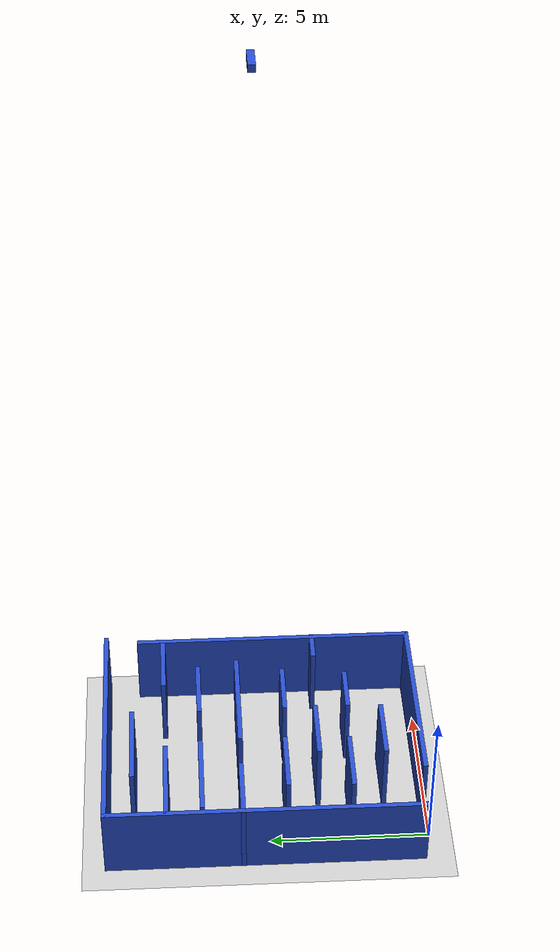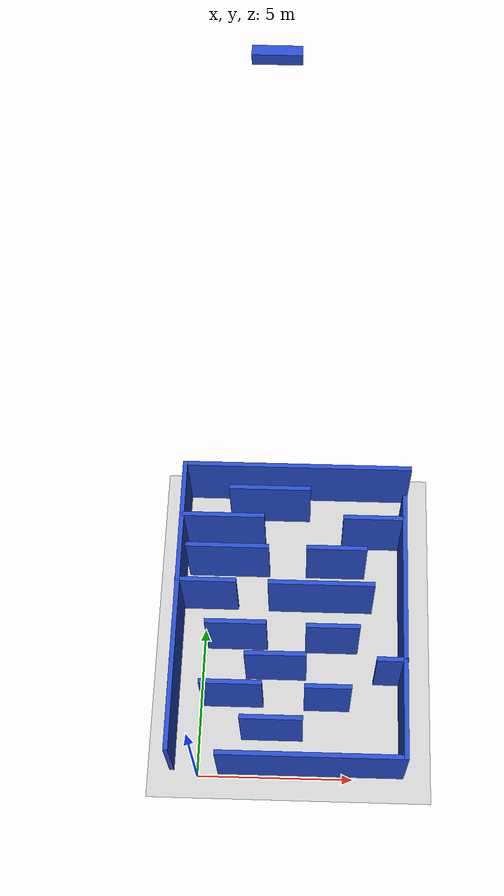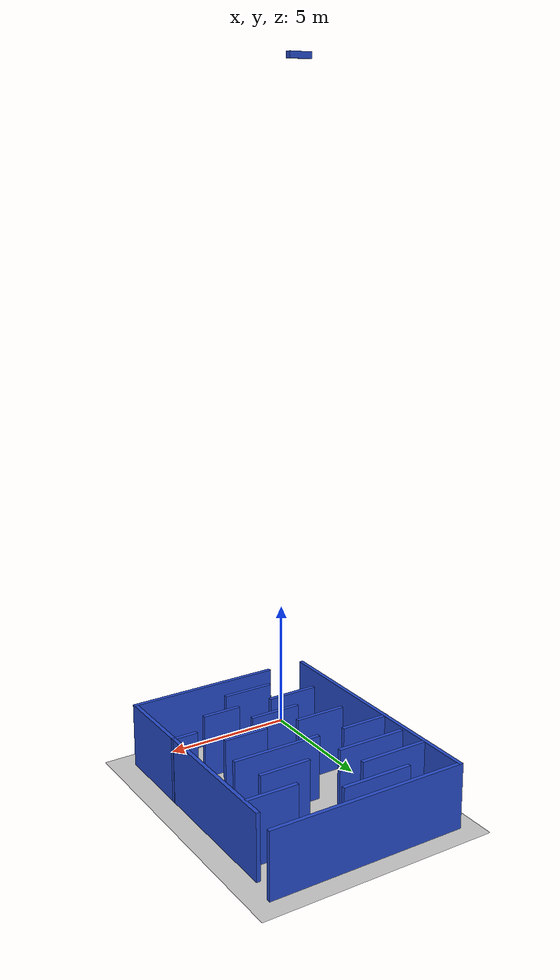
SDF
<sdf version="1.7">
 <world name="default">
  <light name="sun" type="directional">
   <pose>0 0 10 0 -0 0</pose>
   <diffuse>0.8 0.8 0.8 1</diffuse>
   <specular>0.2 0.2 0.2 1</specular>
   <attenuation>
    <range>1000</range>
    <constant>0.9</constant>
    <linear>0.01</linear>
    <quadratic>0.001</quadratic>
   </attenuation>
   <direction>-0.5 0.1 -0.9</direction>
   <spot><inner_angle>0</inner_angle><outer_angle>0</outer_angle><falloff>0</falloff></spot>
  </light>
  <model name="ground_plane">
   <static>1</static>
   <link name="link">
    <collision name="collision">
     <geometry><plane><normal>0 0 1</normal><size>100 100</size></plane></geometry>
     <surface><friction><ode><mu>100</mu><mu2>50</mu2></ode></friction></surface>
    </collision>
    <visual name="visual">
     <cast_shadows>0</cast_shadows>
     <geometry><plane><normal>0 0 1</normal><size>100 100</size></plane></geometry>
     <material>
      <script><uri>file://media/materials/scripts/gazebo.material</uri><name>Gazebo/Grey</name></script>
     </material>
    </visual>
   </link>
  </model>
  <gravity>0 0 -9.8</gravity>
  <magnetic_field>6e-06 2.3e-05 -4.2e-05</magnetic_field>
  <atmosphere type="adiabatic"/>
  <physics type="ode">
   <max_step_size>0.001</max_step_size>
   <real_time_factor>1</real_time_factor>
   <real_time_update_rate>1000</real_time_update_rate>
  </physics>
  <scene><ambient>0.4 0.4 0.4 1</ambient><background>0.7 0.7 0.7 1</background><shadows>0</shadows></scene>
  <spherical_coordinates>
   <surface_model>EARTH_WGS84</surface_model>
   <latitude_deg>0</latitude_deg>
   <longitude_deg>0</longitude_deg>
   <elevation>0</elevation>
   <heading_deg>0</heading_deg>
  </spherical_coordinates>
  <model name="overhead_camera">
   <link name="link_0">
    <inertial>
     <mass>1</mass>
     <inertia>
      <ixx>0.166667</ixx>
      <ixy>0</ixy>
      <ixz>0</ixz>
      <iyy>0.166667</iyy>
      <iyz>0</iyz>
      <izz>0.166667</izz>
     </inertia>
    </inertial>
    <pose>0 2e-06 4.4e-05 0 -0 0</pose>
    <visual name="visual">
     <geometry><box><size>0.8 0.2 0.2</size></box></geometry>
     <material>
      <lighting>1</lighting>
      <script><uri>file://media/materials/scripts/gazebo.material</uri><name>Gazebo/Blue</name></script>
      <shader type="pixel"><normal_map>__default__</normal_map></shader>
      <ambient>0.3 0.3 0.3 1</ambient>
      <diffuse>0.7 0.7 0.7 1</diffuse>
      <specular>0.01 0.01 0.01 1</specular>
      <emissive>0 0 0 1</emissive>
     </material>
     <cast_shadows>0</cast_shadows>
    </visual>
    <collision name="collision">
     <geometry><box><size>0.8 0.2 0.2</size></box></geometry>
     <surface>
      <friction>
       <ode><mu>1</mu><mu2>1</mu2><fdir1>0 0 0</fdir1><slip1>0</slip1><slip2>0</slip2></ode>
       <torsional>
        <coefficient>1</coefficient>
        <patch_radius>0</patch_radius>
        <surface_radius>0</surface_radius>
        <use_patch_radius>1</use_patch_radius>
        <ode><slip>0</slip></ode>
       </torsional>
      </friction>
      <bounce><restitution_coefficient>0</restitution_coefficient><threshold>1e+06</threshold></bounce>
      <contact>
       <collide_without_contact>0</collide_without_contact>
       <collide_without_contact_bitmask>1</collide_without_contact_bitmask>
       <collide_bitmask>1</collide_bitmask>
       <ode>
        <soft_cfm>0</soft_cfm>
        <soft_erp>0.2</soft_erp>
        <kp>1e+13</kp>
        <kd>1</kd>
        <max_vel>0.01</max_vel>
        <min_depth>0</min_depth>
       </ode>
       <bullet>
        <split_impulse>1</split_impulse>
        <split_impulse_penetration_threshold>-0.01</split_impulse_penetration_threshold>
        <soft_cfm>0</soft_cfm>
        <soft_erp>0.2</soft_erp>
        <kp>1e+13</kp>
        <kd>1</kd>
       </bullet>
      </contact>
     </surface>
    </collision>
    <sensor name="upper_camera" type="camera">
     <pose>0 0 0 0 1.57 0</pose>
     <update_rate>30</update_rate>
     <visualize>1</visualize>
     <camera name="head">
      <horizontal_fov>1.0856</horizontal_fov>
      <image><width>1280</width><height>720</height><format>R8G8B8</format></image>
      <clip><near>0.03</near><far>100</far></clip>
      <noise><type>gaussian</type><mean>0</mean><stddev>0.007</stddev></noise>
     </camera>
     <plugin name="camera_controller" filename="libgazebo_ros_camera.so">
      <alwaysOn>1</alwaysOn>
      <updateRate>0.0</updateRate>
      <cameraName>rrbot/upper_camera</cameraName>
      <imageTopicName>image_raw</imageTopicName>
      <cameraInfoTopicName>camera_info</cameraInfoTopicName>
      <frameName>camera_link</frameName>
      <hackBaseline>0.07</hackBaseline>
      <distortionK1>0.0</distortionK1>
      <distortionK2>0.0</distortionK2>
      <distortionK3>0.0</distortionK3>
      <distortionT1>0.0</distortionT1>
      <distortionT2>0.0</distortionT2>
     </plugin>
    </sensor>
   </link>
   <static>1</static>
   <pose>2.7 5.4 25.4 0 -0 0</pose>
  </model>
  <model name="world_6">
   <pose>2.95209 5.08771 0 0 -0 0</pose>
   <link name="Wall_10">
    <collision name="Wall_10_Collision">
     <geometry><box><size>7.75 0.15 2.5</size></box></geometry>
     <pose>0 0 1.25 0 -0 0</pose>
    </collision>
    <visual name="Wall_10_Visual">
     <pose>0 0 1.25 0 -0 0</pose>
     <geometry><box><size>7.75 0.15 2.5</size></box></geometry>
     <material>
      <script><uri>file://media/materials/scripts/gazebo.material</uri><name>Gazebo/Blue</name></script>
      <ambient>0.996078 0.47451 0.0196078 1</ambient>
     </material>
     <meta><layer>0</layer></meta>
    </visual>
    <pose>0 5.01269 0 0 -0 0</pose>
   </link>
   <link name="Wall_18">
    <collision name="Wall_18_Collision">
     <geometry><box><size>6 0.15 2.5</size></box></geometry>
     <pose>0 0 1.25 0 -0 0</pose>
    </collision>
    <visual name="Wall_18_Visual">
     <pose>0 0 1.25 0 -0 0</pose>
     <geometry><box><size>6 0.15 2.5</size></box></geometry>
     <material>
      <script><uri>file://media/materials/scripts/gazebo.material</uri><name>Gazebo/Blue</name></script>
      <ambient>0.996078 0.47451 0.0196078 1</ambient>
     </material>
     <meta><layer>0</layer></meta>
    </visual>
    <pose>0.698755 -4.92497 0 0 -0 0</pose>
   </link>
   <link name="Wall_19">
    <collision name="Wall_19_Collision">
     <geometry><box><size>9 0.15 2.5</size></box></geometry>
     <pose>0 0 1.25 0 -0 0</pose>
    </collision>
    <visual name="Wall_19_Visual">
     <pose>0 0 1.25 0 -0 0</pose>
     <geometry><box><size>9 0.15 2.5</size></box></geometry>
     <material>
      <script><uri>file://media/materials/scripts/gazebo.material</uri><name>Gazebo/Blue</name></script>
      <ambient>0.996078 0.47451 0.0196078 1</ambient>
     </material>
     <meta><layer>0</layer></meta>
    </visual>
    <pose>3.62375 -0.499968 0 0 -0 1.5708</pose>
   </link>
   <link name="Wall_30">
    <collision name="Wall_30_Collision">
     <geometry><box><size>4 0.15 2.5</size></box></geometry>
     <pose>0 0 1.25 0 -0 0</pose>
    </collision>
    <visual name="Wall_9_Visual">
     <pose>0 0 1.25 0 -0 0</pose>
     <geometry><box><size>10 0.15 2.5</size></box></geometry>
     <material>
      <script><uri>file://media/materials/scripts/gazebo.material</uri><name>Gazebo/Blue</name></script>
      <ambient>0.996078 0.47451 0.0196078 1</ambient>
     </material>
     <meta><layer>0</layer></meta>
    </visual>
    <pose>-3.8 0.087685 0 0 -0 1.5708</pose>
   </link>
   <static>1</static>
  </model>
  <model name="course9">
   <pose>2.80356 4.66585 0 0 -0 0</pose>
   <link name="Wall_18">
    <collision name="Wall_18_Collision">
     <geometry><box><size>2 0.15 2.5</size></box></geometry>
     <pose>0 0 1.25 0 -0 0</pose>
    </collision>
    <visual name="Wall_18_Visual">
     <pose>0 0 1.25 0 -0 0</pose>
     <geometry><box><size>2 0.15 2.5</size></box></geometry>
     <material>
      <script><uri>file://media/materials/scripts/gazebo.material</uri><name>Gazebo/Blue</name></script>
      <ambient>0.996078 0.47451 0.0196078 1</ambient>
     </material>
     <meta><layer>0</layer></meta>
    </visual>
    <pose>-0.443606 -3.35167 0 0 -0 0</pose>
   </link>
   <link name="Wall_20">
    <collision name="Wall_20_Collision">
     <geometry><box><size>2 0.15 2.5</size></box></geometry>
     <pose>0 0 1.25 0 -0 0</pose>
    </collision>
    <visual name="Wall_20_Visual">
     <pose>0 0 1.25 0 -0 0</pose>
     <geometry><box><size>2 0.15 2.5</size></box></geometry>
     <material>
      <script><uri>file://media/materials/scripts/gazebo.material</uri><name>Gazebo/Blue</name></script>
      <ambient>0.996078 0.47451 0.0196078 1</ambient>
     </material>
     <meta><layer>0</layer></meta>
    </visual>
    <pose>-1.76534 -2.23863 0 0 -0 0</pose>
   </link>
   <link name="Wall_22">
    <collision name="Wall_22_Collision">
     <geometry><box><size>1.5 0.15 2.5</size></box></geometry>
     <pose>0 0 1.25 0 -0 0</pose>
    </collision>
    <visual name="Wall_22_Visual">
     <pose>0 0 1.25 0 -0 0</pose>
     <geometry><box><size>1.5 0.15 2.5</size></box></geometry>
     <material>
      <script><uri>file://media/materials/scripts/gazebo.material</uri><name>Gazebo/Blue</name></script>
      <ambient>0.996078 0.47451 0.0196078 1</ambient>
     </material>
     <meta><layer>0</layer></meta>
    </visual>
    <pose>1.32378 -2.30819 0 0 -0 0</pose>
   </link>
   <link name="Wall_24">
    <collision name="Wall_24_Collision">
     <geometry><box><size>2 0.15 2.5</size></box></geometry>
     <pose>0 0 1.25 0 -0 0</pose>
    </collision>
    <visual name="Wall_24_Visual">
     <pose>0 0 1.25 0 -0 0</pose>
     <geometry><box><size>2 0.15 2.5</size></box></geometry>
     <material>
      <script><uri>file://media/materials/scripts/gazebo.material</uri><name>Gazebo/Blue</name></script>
      <ambient>0.996078 0.47451 0.0196078 1</ambient>
     </material>
     <meta><layer>0</layer></meta>
    </visual>
    <pose>-0.374041 -1.26471 0 0 -0 0</pose>
   </link>
   <link name="Wall_26">
    <collision name="Wall_26_Collision">
     <geometry><box><size>2 0.15 2.5</size></box></geometry>
     <pose>0 0 1.25 0 -0 0</pose>
    </collision>
    <visual name="Wall_26_Visual">
     <pose>0 0 1.25 0 -0 0</pose>
     <geometry><box><size>2 0.15 2.5</size></box></geometry>
     <material>
      <script><uri>file://media/materials/scripts/gazebo.material</uri><name>Gazebo/Blue</name></script>
      <ambient>0.996078 0.47451 0.0196078 1</ambient>
     </material>
     <meta><layer>0</layer></meta>
    </visual>
    <pose>-1.69578 -0.221236 0 0 -0 0</pose>
   </link>
   <link name="Wall_28">
    <collision name="Wall_28_Collision">
     <geometry><box><size>1.75 0.15 2.5</size></box></geometry>
     <pose>0 0 1.25 0 -0 0</pose>
    </collision>
    <visual name="Wall_28_Visual">
     <pose>0 0 1.25 0 -0 0</pose>
     <geometry><box><size>1.75 0.15 2.5</size></box></geometry>
     <material>
      <script><uri>file://media/materials/scripts/gazebo.material</uri><name>Gazebo/Blue</name></script>
      <ambient>0.996078 0.47451 0.0196078 1</ambient>
     </material>
     <meta><layer>0</layer></meta>
    </visual>
    <pose>1.44878 -0.290802 0 0 -0 0</pose>
   </link>
   <link name="Wall_30">
    <collision name="Wall_30_Collision">
     <geometry><box><size>2 0.15 2.5</size></box></geometry>
     <pose>0 0 1.25 0 -0 0</pose>
    </collision>
    <visual name="Wall_30_Visual">
     <pose>0 0 1.25 0 -0 0</pose>
     <geometry><box><size>2 0.15 2.5</size></box></geometry>
     <material>
      <script><uri>file://media/materials/scripts/gazebo.material</uri><name>Gazebo/Blue</name></script>
      <ambient>0.996078 0.47451 0.0196078 1</ambient>
     </material>
     <meta><layer>0</layer></meta>
    </visual>
    <pose>-2.73556 1.20758 0 0 -0 3.14159</pose>
   </link>
   <link name="Wall_32">
    <collision name="Wall_32_Collision">
     <geometry><box><size>3.5 0.15 2.5</size></box></geometry>
     <pose>0 0 1.25 0 -0 0</pose>
    </collision>
    <visual name="Wall_32_Visual">
     <pose>0 0 1.25 0 -0 0</pose>
     <geometry><box><size>3.5 0.15 2.5</size></box></geometry>
     <material>
      <script><uri>file://media/materials/scripts/gazebo.material</uri><name>Gazebo/Blue</name></script>
      <ambient>0.996078 0.47451 0.0196078 1</ambient>
     </material>
     <meta><layer>0</layer></meta>
    </visual>
    <pose>1.04797 1.18127 0 0 -0 0</pose>
   </link>
   <link name="Wall_34">
    <collision name="Wall_34_Collision">
     <geometry><box><size>2.75 0.15 2.5</size></box></geometry>
     <pose>0 0 1.25 0 -0 0</pose>
    </collision>
    <visual name="Wall_34_Visual">
     <pose>0 0 1.25 0 -0 0</pose>
     <geometry><box><size>2.75 0.15 2.5</size></box></geometry>
     <material>
      <script><uri>file://media/materials/scripts/gazebo.material</uri><name>Gazebo/Blue</name></script>
      <ambient>0.996078 0.47451 0.0196078 1</ambient>
     </material>
     <meta><layer>0</layer></meta>
    </visual>
    <pose>-2.0886 2.44371 0 0 -0 0</pose>
   </link>
   <link name="Wall_36">
    <collision name="Wall_36_Collision">
     <geometry><box><size>2 0.15 2.5</size></box></geometry>
     <pose>0 0 1.25 0 -0 0</pose>
    </collision>
    <visual name="Wall_36_Visual">
     <pose>0 0 1.25 0 -0 0</pose>
     <geometry><box><size>2 0.15 2.5</size></box></geometry>
     <material>
      <script><uri>file://media/materials/scripts/gazebo.material</uri><name>Gazebo/Blue</name></script>
      <ambient>0.996078 0.47451 0.0196078 1</ambient>
     </material>
     <meta><layer>0</layer></meta>
    </visual>
    <pose>1.5341 2.44371 0 0 -0 0</pose>
   </link>
   <link name="Wall_39">
    <collision name="Wall_39_Collision">
     <geometry><box><size>2 0.15 2.5</size></box></geometry>
     <pose>0 0 1.25 0 -0 0</pose>
    </collision>
    <visual name="Wall_39_Visual">
     <pose>0 0 1.25 0 -0 0</pose>
     <geometry><box><size>2 0.15 2.5</size></box></geometry>
     <material>
      <script><uri>file://media/materials/scripts/gazebo.material</uri><name>Gazebo/Blue</name></script>
      <ambient>0.996078 0.47451 0.0196078 1</ambient>
     </material>
     <meta><layer>0</layer></meta>
    </visual>
    <pose>2.73556 3.57112 0 0 -0 3.14159</pose>
   </link>
   <link name="Wall_42">
    <collision name="Wall_42_Collision">
     <geometry><box><size>2.75 0.15 2.5</size></box></geometry>
     <pose>0 0 1.25 0 -0 0</pose>
    </collision>
    <visual name="Wall_42_Visual">
     <pose>0 0 1.25 0 -0 0</pose>
     <geometry><box><size>2.75 0.15 2.5</size></box></geometry>
     <material>
      <script><uri>file://media/materials/scripts/gazebo.material</uri><name>Gazebo/Blue</name></script>
      <ambient>0.996078 0.47451 0.0196078 1</ambient>
     </material>
     <meta><layer>0</layer></meta>
    </visual>
    <pose>-2.26894 3.54833 0 0 -0 3.14159</pose>
   </link>
   <link name="Wall_44">
    <collision name="Wall_44_Collision">
     <geometry><box><size>2.75 0.15 2.5</size></box></geometry>
     <pose>0 0 1.25 0 -0 0</pose>
    </collision>
    <visual name="Wall_44_Visual">
     <pose>0 0 1.25 0 -0 0</pose>
     <geometry><box><size>2.75 0.15 2.5</size></box></geometry>
     <material>
      <script><uri>file://media/materials/scripts/gazebo.material</uri><name>Gazebo/Blue</name></script>
      <ambient>0.996078 0.47451 0.0196078 1</ambient>
     </material>
     <meta><layer>0</layer></meta>
    </visual>
    <pose>-0.752088 4.59085 0 0 -0 0</pose>
   </link>
   <static>1</static>
  </model>
  <model name="cours9_add-on">
   <pose>3.33077 1.69111 0 0 -0 0</pose>
   <link name="Wall_54">
    <collision name="Wall_54_Collision">
     <geometry><box><size>1 0.15 2.5</size></box></geometry>
     <pose>0 0 1.25 0 -0 0</pose>
    </collision>
    <visual name="Wall_54_Visual">
     <pose>0 0 1.25 0 -0 0</pose>
     <geometry><box><size>1 0.15 2.5</size></box></geometry>
     <material>
      <script><uri>file://media/materials/scripts/gazebo.material</uri><name>Gazebo/Blue</name></script>
      <ambient>0.996078 0.47451 0.0196078 1</ambient>
     </material>
     <meta><layer>0</layer></meta>
    </visual>
    <pose>2.83077 1.61611 0 0 -0 3.14159</pose>
   </link>
   <static>1</static>
  </model>
 </world>
</sdf>
